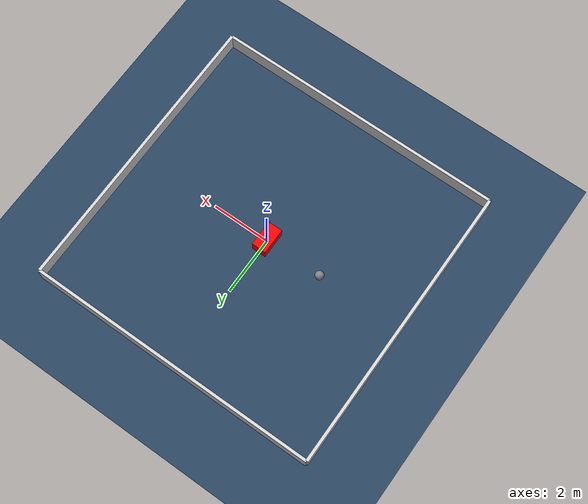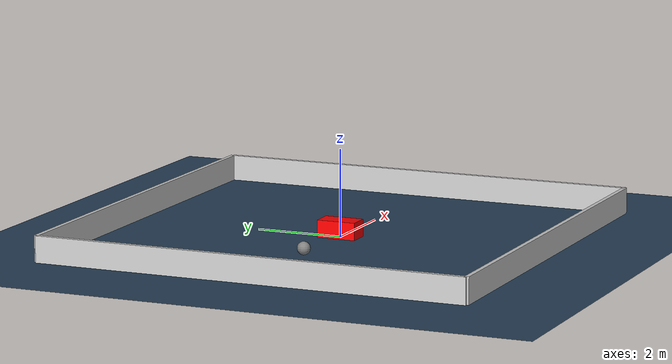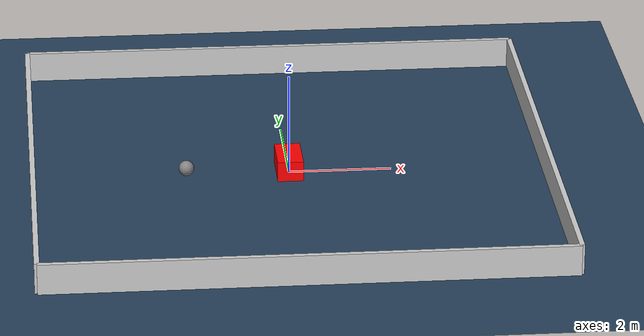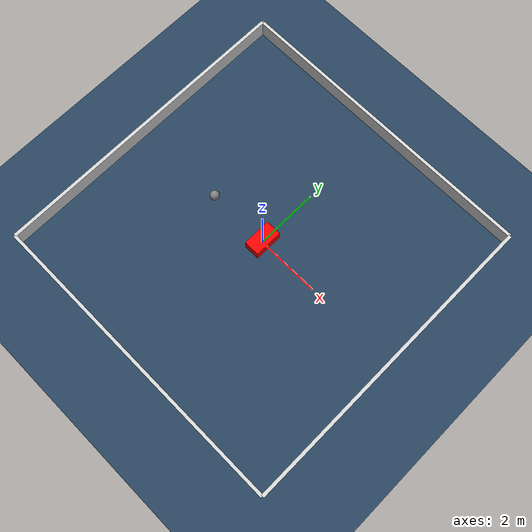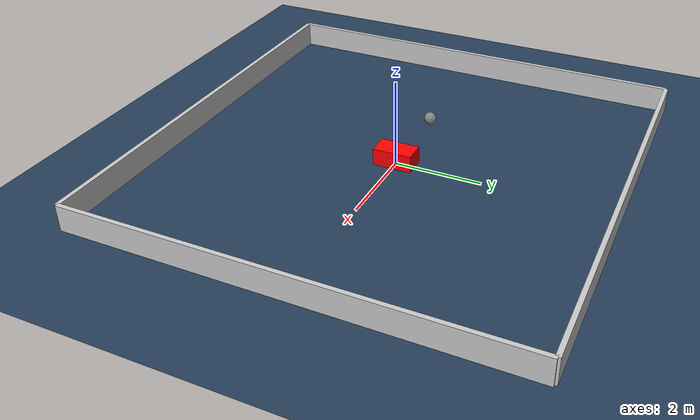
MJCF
<?xml version="1.0" ?>
<mujoco model="nominal_primitive_generation">
  <option cone="elliptic" integrator="RK4" timestep="0.01"/>
  <default>
    <geom density="1"/>
  </default>
  <asset>
    <texture builtin="gradient" height="3072" rgb1="0.3 0.5 0.7" rgb2="0 0 0" type="skybox" width="512"/>
    <texture builtin="checker" height="300" mark="edge" markrgb="0.8 0.8 0.8" name="groundplane" rgb1="0.2 0.3 0.4" rgb2="0.1 0.2 0.3" type="2d" width="300"/>
    <material name="groundplane" reflectance="0.2" texrepeat="5 5" texture="groundplane" texuniform="true"/>
    <material name="robot" rgba="1.0 1.0 0.0 1.0"/>
  </asset>
  <worldbody>
    <light dir="0 0 -1" directional="true" pos="0 0 1.5"/>
    <geom condim="4" friction="0.5 0.005 0.001" material="groundplane" name="floor" size="0 0 0.05" type="plane"/>

    <!-- Robot positioned away from origin for primitive generation -->
    <body name="robot">
      <joint axis="1 0 0" name="joint_x" pos="0 0 0" type="slide"/>
      <joint axis="0 1 0" name="joint_y" pos="0 0 0" type="slide"/>
      <geom condim="4" friction="1.0 0.005 0.0001" mass="5.0" name="robot" pos="-2.0 0.0 0.15" size="0.15 0.15 0.15" type="sphere"/>
    </body>

    <!-- Tall object: 0.25x0.45m (depth > width) -->
    <body name="obstacle_1_movable">
      <geom condim="4" euler="0 0 0" friction="0.0 0.005 0.001" mass="0.1" name="obstacle_1_movable" pos="0.0 0.0 0.2" rgba="1 0 0 1" size="0.25 0.45 0.2" type="box"/>
      <joint type="free"/>
    </body>
    <body name="walls">
      <geom condim="4" name="wall_1" pos="-5.0 0.0 0.3" rgba="0.8 0.8 0.8 1" size="0.05 5.0 0.3" type="box"/>
      <geom condim="4" name="wall_2" pos="5.0 0.0 0.3" rgba="0.8 0.8 0.8 1" size="0.05 5.0 0.3" type="box"/>
      <geom condim="4" name="wall_3" pos="0.0 -5.0 0.3" rgba="0.8 0.8 0.8 1" size="5.0 0.05 0.3" type="box"/>
      <geom condim="4" name="wall_4" pos="0.0 5.0 0.3" rgba="0.8 0.8 0.8 1" size="5.0 0.05 0.3" type="box"/>
    </body>
  </worldbody>

  <actuator>
    <velocity kv="50" ctrlrange="-0.5 0.5" forcerange="-20 20" joint="joint_x" name="actuator_x"/>
    <velocity kv="50" ctrlrange="-0.5 0.5" forcerange="-20 20" joint="joint_y" name="actuator_y"/>
  </actuator>
</mujoco>
